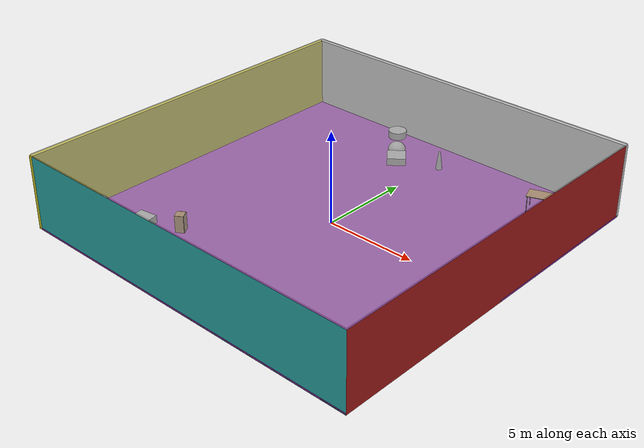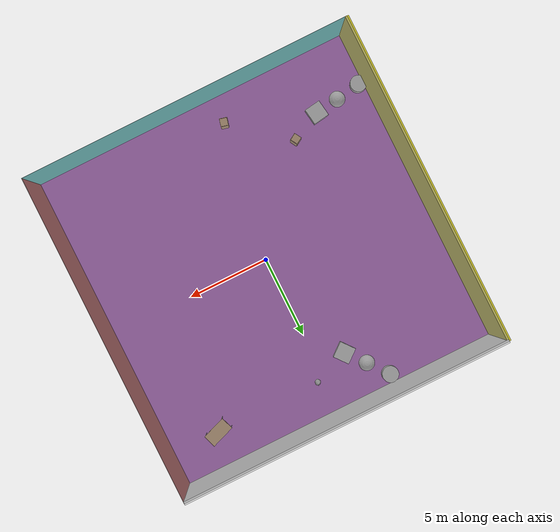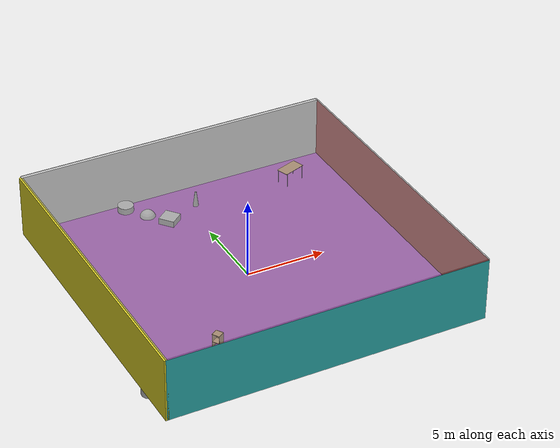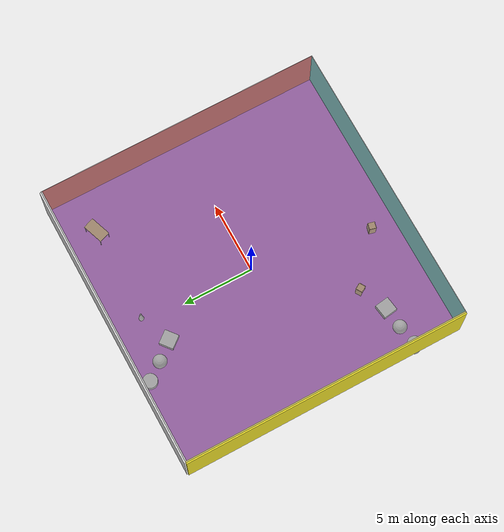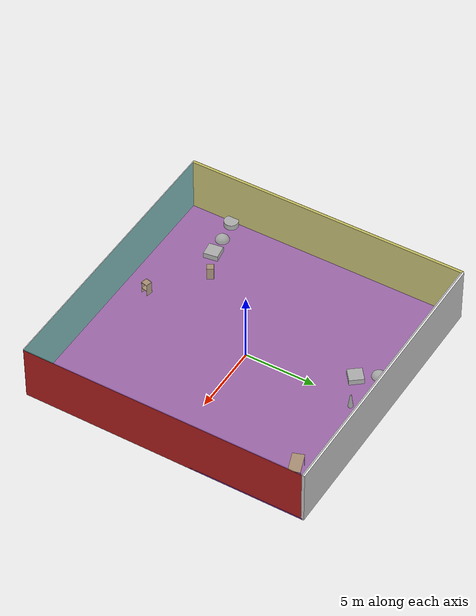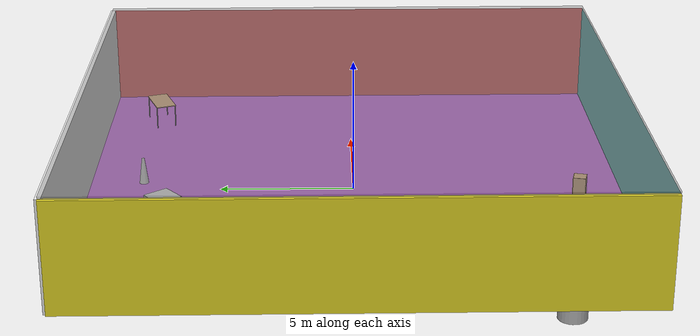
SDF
<sdf version="1.4">
 <world name="default">
  <physics type="ode">
   <max_step_size>0.001</max_step_size>
   <real_time_factor>1</real_time_factor>
   <real_time_update_rate>1000</real_time_update_rate>
   <gravity>0 0 -9.8</gravity>
  </physics>
  <scene><ambient>0.4 0.4 0.4 1</ambient><background>0.7 0.7 0.7 1</background><shadows>1</shadows></scene>
  <model name="Surrounding">
   <static>1</static>
   <link name="Ceiling">
    <collision name="Ceiling_Collision"><geometry><box><size>20 20 0.1</size></box></geometry></collision>
    <visual name="Ceiling_Visual">
     <geometry><box><size>20 20 0.1</size></box></geometry>
     <material>
      <script><uri>file://media/materials/scripts/gazebo.material</uri><name>Gazebo/GreyTransparent</name></script>
     </material>
    </visual>
    <pose>0 0 4.05 0 0 0</pose>
   </link>
   <link name="Wall_South">
    <collision name="Wall_South_Collision">
     <geometry><box><size>20 0 4</size></box></geometry>
     <pose>0 0 2 0 -0 0</pose>
    </collision>
    <visual name="Wall_South_Visual">
     <pose>0 0 2 0 -0 0</pose>
     <geometry><box><size>20 0 4</size></box></geometry>
     <material>
      <script><uri>file://media/materials/scripts/gazebo.material</uri><name>Gazebo/TurquoiseGlow</name></script>
     </material>
    </visual>
    <velocity_decay><linear>0</linear><angular>0</angular></velocity_decay>
    <pose>0 -10 0 0 -0 0</pose>
   </link>
   <link name="Wall_East">
    <collision name="Wall_21_Collision">
     <geometry><box><size>20 0 4</size></box></geometry>
     <pose>0 0 2 0 -0 0</pose>
    </collision>
    <visual name="Wall_21_Visual">
     <pose>0 0 2 0 -0 0</pose>
     <geometry><box><size>20 0 4</size></box></geometry>
     <material>
      <script><uri>file://media/materials/scripts/gazebo.material</uri><name>Gazebo/RedBright</name></script>
     </material>
    </visual>
    <velocity_decay><linear>0</linear><angular>0</angular></velocity_decay>
    <pose>10 0 0 0 -0 1.5708</pose>
   </link>
   <link name="Wall_North">
    <collision name="Wall_22_Collision">
     <geometry><box><size>20 0.2 4</size></box></geometry>
     <pose>0 0 2 0 -0 0</pose>
    </collision>
    <visual name="Wall_22_Visual">
     <pose>0 0 2 0 -0 0</pose>
     <geometry><box><size>20 0.2 4</size></box></geometry>
     <material>
      <script><uri>file://media/materials/scripts/gazebo.material</uri><name>Gazebo/White</name></script>
     </material>
    </visual>
    <velocity_decay><linear>0</linear><angular>0</angular></velocity_decay>
    <pose>0 10 0 0 -0 0</pose>
   </link>
   <link name="Wall_West">
    <collision name="Wall_23_Collision">
     <geometry><box><size>20 0.2 4</size></box></geometry>
     <pose>0 0 2 0 -0 0</pose>
    </collision>
    <visual name="Wall_23_Visual">
     <pose>0 0 2 0 -0 0</pose>
     <geometry><box><size>20 0.2 4</size></box></geometry>
     <material>
      <script><uri>file://media/materials/scripts/gazebo.material</uri><name>Gazebo/YellowGlow</name></script>
     </material>
    </visual>
    <velocity_decay><linear>0</linear><angular>0</angular></velocity_decay>
    <pose>-10 0 0 0 0 -1.5708</pose>
   </link>
   <link name="Ground_link">
    <collision name="collision">
     <pose>0 0 .05 0 -0 0</pose>
     <geometry><box><size>20 20 0.1</size></box></geometry>
    </collision>
    <visual name="visual">
     <pose>0 0 .05 0 -0 0</pose>
     <geometry><box><size>20 20 0.1</size></box></geometry>
     <material>
      <script><uri>file://media/materials/scripts/gazebo.material</uri><name>Gazebo/PurpleGlow</name></script>
     </material>
    </visual>
   </link>
   <static>1</static>
  </model>
  <spherical_coordinates>
   <surface_model>EARTH_WGS84</surface_model>
   <latitude_deg>0</latitude_deg>
   <longitude_deg>0</longitude_deg>
   <elevation>0</elevation>
   <heading_deg>0</heading_deg>
  </spherical_coordinates>
  <light name="lightball_0" type="diffuse">
   <diffuse>0.8 0.8 0.8 1</diffuse>
   <specular>0.2 0.2 0.2 1</specular>
   <attenuation>
    <range>100</range>
    <constant>0.7</constant>
    <linear>0.01</linear>
    <quadratic>0.001</quadratic>
   </attenuation>
   <direction>-0.5 0.1 -0.9</direction>
   <pose>0.564012723017 3.89699079161 3.69108211505 0 0 0</pose>
  </light>
  <light name="lightball_1" type="diffuse">
   <diffuse>0.8 0.8 0.8 1</diffuse>
   <specular>0.2 0.2 0.2 1</specular>
   <attenuation>
    <range>100</range>
    <constant>0.7</constant>
    <linear>0.01</linear>
    <quadratic>0.001</quadratic>
   </attenuation>
   <direction>-0.5 0.1 -0.9</direction>
   <pose>7.33562780961 4.49097631344 2.31797148405 0 0 0</pose>
  </light>
  <light name="lightball_2" type="diffuse">
   <diffuse>0.8 0.8 0.8 1</diffuse>
   <specular>0.2 0.2 0.2 1</specular>
   <attenuation>
    <range>100</range>
    <constant>0.7</constant>
    <linear>0.01</linear>
    <quadratic>0.001</quadratic>
   </attenuation>
   <direction>-0.5 0.1 -0.9</direction>
   <pose>-5.15655773805 -1.61335815954 3.01578718873 0 0 0</pose>
  </light>
  <light name="lightball_3" type="diffuse">
   <diffuse>0.8 0.8 0.8 1</diffuse>
   <specular>0.2 0.2 0.2 1</specular>
   <attenuation>
    <range>100</range>
    <constant>0.7</constant>
    <linear>0.01</linear>
    <quadratic>0.001</quadratic>
   </attenuation>
   <direction>-0.5 0.1 -0.9</direction>
   <pose>-7.53284363083 -7.85747795288 2.88458924152 0 0 0</pose>
  </light>
  <light name="lightball_4" type="diffuse">
   <diffuse>0.8 0.8 0.8 1</diffuse>
   <specular>0.2 0.2 0.2 1</specular>
   <attenuation>
    <range>100</range>
    <constant>0.7</constant>
    <linear>0.01</linear>
    <quadratic>0.001</quadratic>
   </attenuation>
   <direction>-0.5 0.1 -0.9</direction>
   <pose>-9.49177786315 -1.75526424298 3.32316065053 0 0 0</pose>
  </light>
  <light name="lightball_5" type="diffuse">
   <diffuse>0.8 0.8 0.8 1</diffuse>
   <specular>0.2 0.2 0.2 1</specular>
   <attenuation>
    <range>100</range>
    <constant>0.7</constant>
    <linear>0.01</linear>
    <quadratic>0.001</quadratic>
   </attenuation>
   <direction>-0.5 0.1 -0.9</direction>
   <pose>-4.27001361684 8.92637229101 3.73047676425 0 0 0</pose>
  </light>
  <light name="lightball_6" type="diffuse">
   <diffuse>0.8 0.8 0.8 1</diffuse>
   <specular>0.2 0.2 0.2 1</specular>
   <attenuation>
    <range>100</range>
    <constant>0.7</constant>
    <linear>0.01</linear>
    <quadratic>0.001</quadratic>
   </attenuation>
   <direction>-0.5 0.1 -0.9</direction>
   <pose>-3.84263981965 4.90084248047 2.03829014665 0 0 0</pose>
  </light>
  <light name="lightball_7" type="diffuse">
   <diffuse>0.8 0.8 0.8 1</diffuse>
   <specular>0.2 0.2 0.2 1</specular>
   <attenuation>
    <range>100</range>
    <constant>0.7</constant>
    <linear>0.01</linear>
    <quadratic>0.001</quadratic>
   </attenuation>
   <direction>-0.5 0.1 -0.9</direction>
   <pose>4.13615203085 -0.447669597542 3.32240499574 0 0 0</pose>
  </light>
  <include>
   <uri>model://textured_shapes</uri>
   <pose>-8.09604781751 -6.66567223995 0 0 0 1.7155320191</pose>
  </include>
  <include><uri>model://cabinet</uri><pose>-4.7618784582 -5.55137068874 0 0 0 0.540462747321</pose></include>
  <include><uri>model://cabinet</uri><pose>-1.41293436306 -8.31438114351 0 0 0 2.89942769141</pose></include>
  <include>
   <uri>model://textured_shapes</uri>
   <pose>-2.65322475927 8.18997564693 0 0 0 0.673072990789</pose>
  </include>
  <include>
   <uri>model://construction_cone</uri>
   <pose>0.481808536953 7.91808423633 0 0 0 1.96221115484</pose>
  </include>
  <include><uri>model://table</uri><pose>6.99916483968 7.8057854855 0 0 0 0.341829853878</pose></include>
 </world>
</sdf>

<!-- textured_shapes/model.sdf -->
<sdf version="1.6">
  <model name="textured_shapes">
    <pose>0 0 0.5 0 0 0</pose>
    <link name="box">
      <pose>0 -1.5 0 0 0 0</pose>
      <collision name="collision">
        <geometry>
          <box>
            <size>1 1 1</size>
          </box>
        </geometry>
      </collision>
      <visual name="visual">
        <geometry>
          <box>
            <size>1 1 1</size>
          </box>
        </geometry>
        <material>
          <script>
            <uri>model://../model_source/models/textured_shapes/materials/scripts</uri>
            <uri>model://../model_source/models/textured_shapes/materials/textures</uri>
            <name>TexturedShape/Squares</name>
          </script>
        </material>
      </visual>
    </link>
    <link name="sphere">
      <collision name="collision">
        <geometry>
          <sphere>
            <radius>0.5</radius>
          </sphere>
        </geometry>
      </collision>
      <visual name="visual">
        <geometry>
          <sphere>
            <radius>0.5</radius>
          </sphere>
        </geometry>
        <material>
          <script>
            <uri>model://../model_source/models/textured_shapes/materials/scripts</uri>
            <uri>model://../model_source/models/textured_shapes/materials/textures</uri>
            <name>TexturedShape/Squares</name>
          </script>
        </material>
      </visual>
    </link>
    <link name="cylinder">
      <pose>0 1.5 0 0 0 0</pose>
      <collision name="collision">
        <geometry>
          <cylinder>
            <radius>0.5</radius>
            <length>1</length>
          </cylinder>
        </geometry>
      </collision>
      <visual name="visual">
        <geometry>
          <cylinder>
            <radius>0.5</radius>
            <length>1</length>
          </cylinder>
        </geometry>
        <material>
          <script>
            <uri>model://../model_source/models/textured_shapes/materials/scripts</uri>
            <uri>model://../model_source/models/textured_shapes/materials/textures</uri>
            <name>TexturedShape/Squares</name>
          </script>
        </material>
      </visual>
    </link>
  </model>
</sdf>

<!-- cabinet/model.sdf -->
<sdf version="1.5">
  <model name="cabinet">
    <static>true</static>
    <link name="cabinet_bottom_plate">
      <inertial>
        <pose>0 0 -1 0 0 0</pose>
        <inertia>
          <ixx>2.050000</ixx>
          <ixy>0</ixy>
          <ixz>0</ixz>
          <iyy>2.050000</iyy>
          <iyz>0</iyz>
          <izz>2.050000</izz>
        </inertia>
        <mass>25.000000</mass>
      </inertial>
      <collision name="cabinet_bottom_plate_geom">
        <pose>0 0 0.010000 0 0 0</pose>
        <geometry>
          <box>
            <size>0.450000 0.450000 0.020000</size>
          </box>
        </geometry>
      </collision>
      <visual name="cabinet_bottom_plate_geom_visual">
        <pose>0 0 0.010000 0 0 0</pose>
        <geometry>
          <box>
            <size>0.450000 0.450000 0.020000</size>
          </box>
        </geometry>
        <material>
          <script>
            <uri>model://media/materials/scripts/gazebo.material</uri>
            <name>Gazebo/Wood</name>
          </script>
        </material>
      </visual>
      <collision name="cabinet_bottom_plate_geom_cabinet_back_plate">
        <pose>0.235000 0 0.510000 0 0 0</pose>
        <geometry>
          <box>
            <size>0.020000 0.450000 1.020000</size>
          </box>
        </geometry>
      </collision>
      <visual name="cabinet_bottom_plate_geom_cabinet_back_plate_visual">
        <pose>0.235000 0 0.510000 0 0 0</pose>
        <geometry>
          <box>
            <size>0.020000 0.450000 1.020000</size>
          </box>
        </geometry>
        <material>
          <script>
            <uri>model://media/materials/scripts/gazebo.material</uri>
            <name>Gazebo/Wood</name>
          </script>
        </material>
      </visual>
      <collision name="cabinet_bottom_plate_geom_cabinet_left_plate">
        <pose>0 0.235000 0.510000 0 0 0</pose>
        <geometry>
          <box>
            <size>0.450000 0.020000 1.020000</size>
          </box>
        </geometry>
      </collision>
      <visual name="cabinet_bottom_plate_geom_cabinet_left_plate_visual">
        <pose>0 0.235000 0.510000 0 0 0</pose>
        <geometry>
          <box>
            <size>0.450000 0.020000 1.020000</size>
          </box>
        </geometry>
        <material>
          <script>
            <uri>model://media/materials/scripts/gazebo.material</uri>
            <name>Gazebo/Wood</name>
          </script>
        </material>
      </visual>
      <collision name="cabinet_bottom_plate_geom_cabinet_middle_plate">
        <pose>0 0 0.510000 0 0 0</pose>
        <geometry>
          <box>
            <size>0.450000 0.450000 0.020000</size>
          </box>
        </geometry>
      </collision>
      <visual name="cabinet_bottom_plate_geom_cabinet_middle_plate_visual">
        <pose>0 0 0.510000 0 0 0</pose>
        <geometry>
          <box>
            <size>0.450000 0.450000 0.020000</size>
          </box>
        </geometry>
        <material>
          <script>
            <uri>model://media/materials/scripts/gazebo.material</uri>
            <name>Gazebo/Wood</name>
          </script>
        </material>
      </visual>
      <collision name="cabinet_bottom_plate_geom_cabinet_right_plate">
        <pose>0 -0.235000 0.510000 0 0 0</pose>
        <geometry>
          <box>
            <size>0.450000 0.020000 1.020000</size>
          </box>
        </geometry>
      </collision>
      <visual name="cabinet_bottom_plate_geom_cabinet_right_plate_visual">
        <pose>0 -0.235000 0.510000 0 0 0</pose>
        <geometry>
          <box>
            <size>0.450000 0.020000 1.020000</size>
          </box>
        </geometry>
        <material>
          <script>
            <uri>model://media/materials/scripts/gazebo.material</uri>
            <name>Gazebo/Wood</name>
          </script>
        </material>
      </visual>
      <collision name="cabinet_bottom_plate_geom_cabinet_top_plate">
        <pose>0 0 1.010000 0 0 0</pose>
        <geometry>
          <box>
            <size>0.450000 0.450000 0.020000</size>
          </box>
        </geometry>
      </collision>
      <visual name="cabinet_bottom_plate_geom_cabinet_top_plate_visual">
        <pose>0 0 1.010000 0 0 0</pose>
        <geometry>
          <box>
            <size>0.450000 0.450000 0.020000</size>
          </box>
        </geometry>
        <material>
          <script>
            <uri>model://media/materials/scripts/gazebo.material</uri>
            <name>Gazebo/Wood</name>
          </script>
        </material>
      </visual>
    </link>
  </model>
</sdf>

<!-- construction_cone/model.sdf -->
<sdf version="1.5">
  <model name="Construction Cone">
    <link name="link">
      <collision name="collision">
        <geometry>
          <mesh>
            <scale>10 10 10</scale>
            <uri>file://isr-testbed/construction_cone/meshes/construction_cone.dae</uri>
          </mesh>
        </geometry>
      </collision>
      <visual name="visual">
        <geometry>
          <mesh>
            <scale>10 10 10</scale>
            <uri>file://isr-testbed/construction_cone/meshes/construction_cone.dae</uri>
          </mesh>
        </geometry>
      </visual>
    </link>
  </model>
</sdf>

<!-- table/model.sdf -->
<sdf version="1.5">
  <model name="table">
    <static>true</static>
    <link name="link">
      <collision name="surface">
        <pose>0 0 1.0 0 0 0</pose>
        <geometry>
          <box>
            <size>1.5 0.8 0.03</size>
          </box>
        </geometry>
        <surface>
          <friction>
            <ode>
              <mu>0.6</mu>
              <mu2>0.6</mu2>
            </ode>
          </friction>
        </surface>
      </collision>
      <visual name="visual1">
        <pose>0 0 1.0 0 0 0</pose>
        <geometry>
          <box>
            <size>1.5 0.8 0.03</size>
          </box>
        </geometry>
        <material>
          <script>
            <uri>model://media/materials/scripts/gazebo.material</uri>
            <name>Gazebo/Wood</name>
          </script>
        </material>
      </visual>
      <collision name="front_left_leg">
        <pose>0.68 0.38 0.5 0 0 0</pose>
        <geometry>
          <cylinder>
            <radius>0.02</radius>
            <length>1.0</length>
          </cylinder>
        </geometry>
      </collision>
      <visual name="front_left_leg">
        <pose>0.68 0.38 0.5 0 0 0</pose>
        <geometry>
          <cylinder>
            <radius>0.02</radius>
            <length>1.0</length>
          </cylinder>
        </geometry>
        <material>
          <script>
            <uri>model://media/materials/scripts/gazebo.material</uri>
            <name>Gazebo/Grey</name>
          </script>
        </material>
      </visual>
      <collision name="front_right_leg">
        <pose>0.68 -0.38 0.5 0 0 0</pose>
        <geometry>
          <cylinder>
            <radius>0.02</radius>
            <length>1.0</length>
          </cylinder>
        </geometry>
      </collision>
      <visual name="front_right_leg">
        <pose>0.68 -0.38 0.5 0 0 0</pose>
        <geometry>
          <cylinder>
            <radius>0.02</radius>
            <length>1.0</length>
          </cylinder>
        </geometry>
        <material>
          <script>
            <uri>model://media/materials/scripts/gazebo.material</uri>
            <name>Gazebo/Grey</name>
          </script>
        </material>
      </visual>
      <collision name="back_right_leg">
        <pose>-0.68 -0.38 0.5 0 0 0</pose>
        <geometry>
          <cylinder>
            <radius>0.02</radius>
            <length>1.0</length>
          </cylinder>
        </geometry>
      </collision>
      <visual name="back_right_leg">
        <pose>-0.68 -0.38 0.5 0 0 0</pose>
        <geometry>
          <cylinder>
            <radius>0.02</radius>
            <length>1.0</length>
          </cylinder>
        </geometry>
        <material>
          <script>
            <uri>model://media/materials/scripts/gazebo.material</uri>
            <name>Gazebo/Grey</name>
          </script>
        </material>
      </visual>
      <collision name="back_left_leg">
        <pose>-0.68 0.38 0.5 0 0 0</pose>
        <geometry>
          <cylinder>
            <radius>0.02</radius>
            <length>1.0</length>
          </cylinder>
        </geometry>
      </collision>
      <visual name="back_left_leg">
        <pose>-0.68 0.38 0.5 0 0 0</pose>
        <geometry>
          <cylinder>
            <radius>0.02</radius>
            <length>1.0</length>
          </cylinder>
        </geometry>
        <material>
          <script>
            <uri>model://media/materials/scripts/gazebo.material</uri>
            <name>Gazebo/Grey</name>
          </script>
        </material>
      </visual>
    </link>
  </model>
</sdf>
